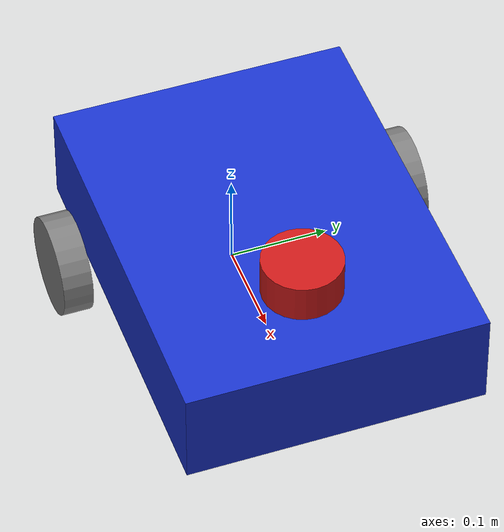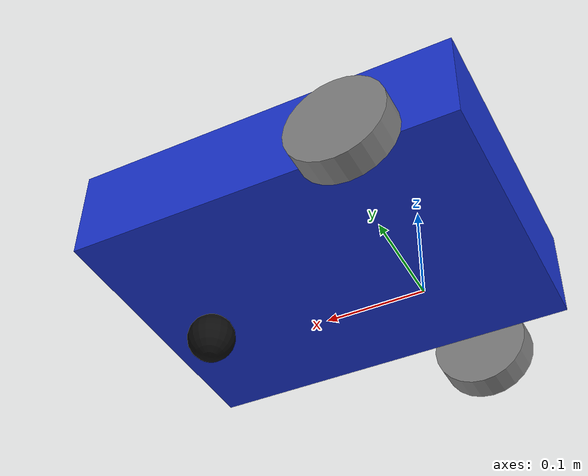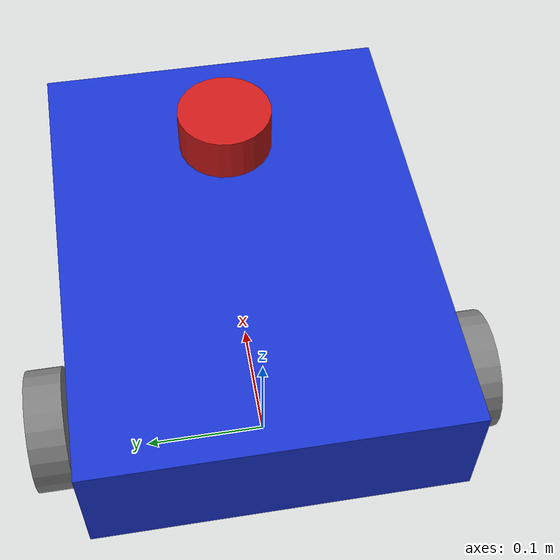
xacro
<?xml version="1.0"?>
<robot name="diff_bot" xmlns:xacro="http://www.ros.org/wiki/xacro">
  <!-- sphere (mặc định) | cylinder: hình dạng collision của bánh dẫn động -->
  <xacro:arg name="wheel_collision" default="sphere"/>
  <xacro:include filename="common_properties.xacro"/>
  <xacro:include filename="mobile_base.xacro"/>
  <xacro:include filename="sensors.xacro"/>
  <xacro:include filename="gazebo.xacro"/>
</robot>

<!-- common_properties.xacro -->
<robot xmlns:xacro="http://www.ros.org/wiki/xacro">

  <material name="blue">
    <color rgba="0.1 0.2 0.8 1.0"/>
  </material>

  <material name="grey">
    <color rgba="0.5 0.5 0.5 1.0"/>
  </material>

  <material name="black">
    <color rgba="0.05 0.05 0.05 1.0"/>
  </material>

  <material name="red">
    <color rgba="0.8 0.1 0.1 1.0"/>
  </material>

  <!-- Macro tính ma trận quán tính cho khối hộp -->
  <xacro:macro name="box_inertia" params="m l w h xyz rpy">
    <inertial>
      <origin xyz="${xyz}" rpy="${rpy}"/>
      <mass value="${m}"/>
      <inertia ixx="${(m/12) * (h*h + w*w)}" ixy="0" ixz="0"
               iyy="${(m/12) * (l*l + h*h)}" iyz="0"
               izz="${(m/12) * (l*l + w*w)}"/>
    </inertial>
  </xacro:macro>

  <!-- Macro tính ma trận quán tính cho hình trụ (bánh xe) -->
  <xacro:macro name="cylinder_inertia" params="m r h xyz rpy">
    <inertial>
      <origin xyz="${xyz}" rpy="${rpy}"/>
      <mass value="${m}"/>
      <inertia ixx="${(m/12) * (3*r*r + h*h)}" ixy="0" ixz="0"
               iyy="${(m/12) * (3*r*r + h*h)}" iyz="0"
               izz="${(m/2) * (r*r)}"/>
    </inertial>
  </xacro:macro>

  <!-- Macro tính ma trận quán tính cho hình cầu (bánh caster) -->
  <xacro:macro name="sphere_inertia" params="m r xyz rpy">
    <inertial>
      <origin xyz="${xyz}" rpy="${rpy}"/>
      <mass value="${m}"/>
      <inertia ixx="${(2/5) * m * r * r}" ixy="0" ixz="0"
               iyy="${(2/5) * m * r * r}" iyz="0"
               izz="${(2/5) * m * r * r}"/>
    </inertial>
  </xacro:macro>

</robot>

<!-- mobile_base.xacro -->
<robot xmlns:xacro="http://www.ros.org/wiki/xacro">

  <xacro:property name="base_length" value="0.4"/>
  <xacro:property name="base_width" value="0.3"/>
  <xacro:property name="base_height" value="0.1"/>
  <xacro:property name="wheel_radius" value="0.05"/>
  <xacro:property name="wheel_length" value="0.03"/>
  <xacro:property name="wheel_track" value="0.35"/>
  <xacro:property name="caster_radius" value="0.025"/>
  <xacro:property name="wheel_collision" value="$(arg wheel_collision)"/>
  <!-- Tâm hộp nằm trước trục bánh một khoảng axle_offset.
       Gốc base_link đặt TRÊN TRỤC BÁNH (chuẩn robot vi sai) để pose odometry
       đúng là pose của base_footprint. -->
  <xacro:property name="axle_offset" value="${base_length / 4.0}"/>

  <link name="base_footprint"/>

  <joint name="base_joint" type="fixed">
    <parent link="base_footprint"/>
    <child link="base_link"/>
    <origin xyz="0 0 ${wheel_radius}" rpy="0 0 0"/>
  </joint>

  <link name="base_link">
    <visual>
      <origin xyz="${axle_offset} 0 ${base_height / 2.0}" rpy="0 0 0"/>
      <geometry>
        <box size="${base_length} ${base_width} ${base_height}"/>
      </geometry>
      <material name="blue"/>
    </visual>
    <collision>
      <origin xyz="${axle_offset} 0 ${base_height / 2.0}" rpy="0 0 0"/>
      <geometry>
        <box size="${base_length} ${base_width} ${base_height}"/>
      </geometry>
    </collision>
    <xacro:box_inertia m="5.0" l="${base_length}" w="${base_width}" h="${base_height}"
                       xyz="${axle_offset} 0 ${base_height / 2.0}" rpy="0 0 0"/>
  </link>

  <xacro:macro name="wheel" params="prefix y_reflect">
    <link name="${prefix}_wheel_link">
      <visual>
        <origin xyz="0 0 0" rpy="${pi / 2.0} 0 0"/>
        <geometry>
          <cylinder radius="${wheel_radius}" length="${wheel_length}"/>
        </geometry>
        <material name="grey"/>
      </visual>
      <xacro:if value="${wheel_collision == 'cylinder'}">
        <collision>
          <origin xyz="0 0 0" rpy="${pi / 2.0} 0 0"/>
          <geometry>
            <cylinder radius="${wheel_radius}" length="${wheel_length}"/>
          </geometry>
        </collision>
      </xacro:if>
      <xacro:unless value="${wheel_collision == 'cylinder'}">
        <collision>
          <origin xyz="0 0 0" rpy="0 0 0"/>
          <geometry>
            <sphere radius="${wheel_radius}"/>
          </geometry>
        </collision>
      </xacro:unless>
      <xacro:cylinder_inertia m="0.5" r="${wheel_radius}" h="${wheel_length}"
                              xyz="0 0 0" rpy="${pi / 2.0} 0 0"/>
    </link>

    <joint name="${prefix}_wheel_joint" type="continuous">
      <parent link="base_link"/>
      <child link="${prefix}_wheel_link"/>
      <!-- x = 0: trục bánh trùng gốc base_link -->
      <origin xyz="0 ${y_reflect * (wheel_track / 2.0)} 0" rpy="0 0 0"/>
      <axis xyz="0 1 0"/>
    </joint>
  </xacro:macro>

  <xacro:wheel prefix="left" y_reflect="1"/>
  <xacro:wheel prefix="right" y_reflect="-1"/>

  <link name="caster_wheel_link">
    <visual>
      <origin xyz="0 0 0" rpy="0 0 0"/>
      <geometry>
        <sphere radius="${caster_radius}"/>
      </geometry>
      <material name="black"/>
    </visual>
    <collision>
      <origin xyz="0 0 0" rpy="0 0 0"/>
      <geometry>
        <sphere radius="${caster_radius}"/>
      </geometry>
    </collision>
    <xacro:sphere_inertia m="0.2" r="${caster_radius}" xyz="0 0 0" rpy="0 0 0"/>
  </link>

  <joint name="caster_wheel_joint" type="fixed">
    <parent link="base_link"/>
    <child link="caster_wheel_link"/>
    <origin xyz="${base_length / 3.0 + axle_offset} 0 ${-(wheel_radius - caster_radius)}" rpy="0 0 0"/>
  </joint>

</robot>

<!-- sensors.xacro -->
<robot xmlns:xacro="http://www.ros.org/wiki/xacro">

  <!-- LiDAR Frame -->
  <link name="lidar_link">
    <visual>
      <origin xyz="0 0 0" rpy="0 0 0"/>
      <geometry>
        <cylinder radius="0.04" length="0.04"/>
      </geometry>
      <material name="red"/>
    </visual>
    <collision>
      <origin xyz="0 0 0" rpy="0 0 0"/>
      <geometry>
        <cylinder radius="0.04" length="0.04"/>
      </geometry>
    </collision>
    <xacro:cylinder_inertia m="0.1" r="0.04" h="0.04" xyz="0 0 0" rpy="0 0 0"/>
  </link>

  <joint name="lidar_joint" type="fixed">
    <parent link="base_link"/>
    <child link="lidar_link"/>
    <origin xyz="${0.1 + axle_offset} 0 0.12" rpy="0 0 0"/>
  </joint>

  <!-- IMU Frame -->
  <link name="imu_link"/>

  <joint name="imu_joint" type="fixed">
    <parent link="base_link"/>
    <child link="imu_link"/>
    <origin xyz="0 0 0.05" rpy="0 0 0"/>
  </joint>

</robot>
